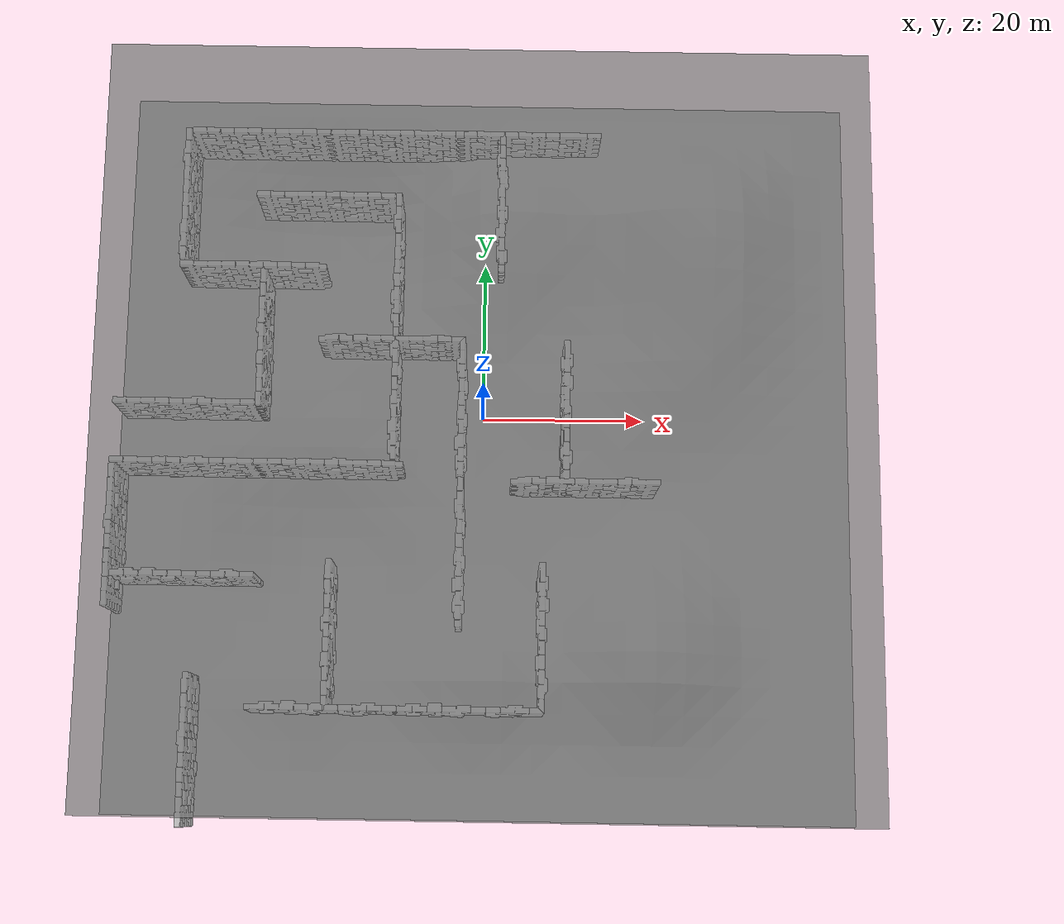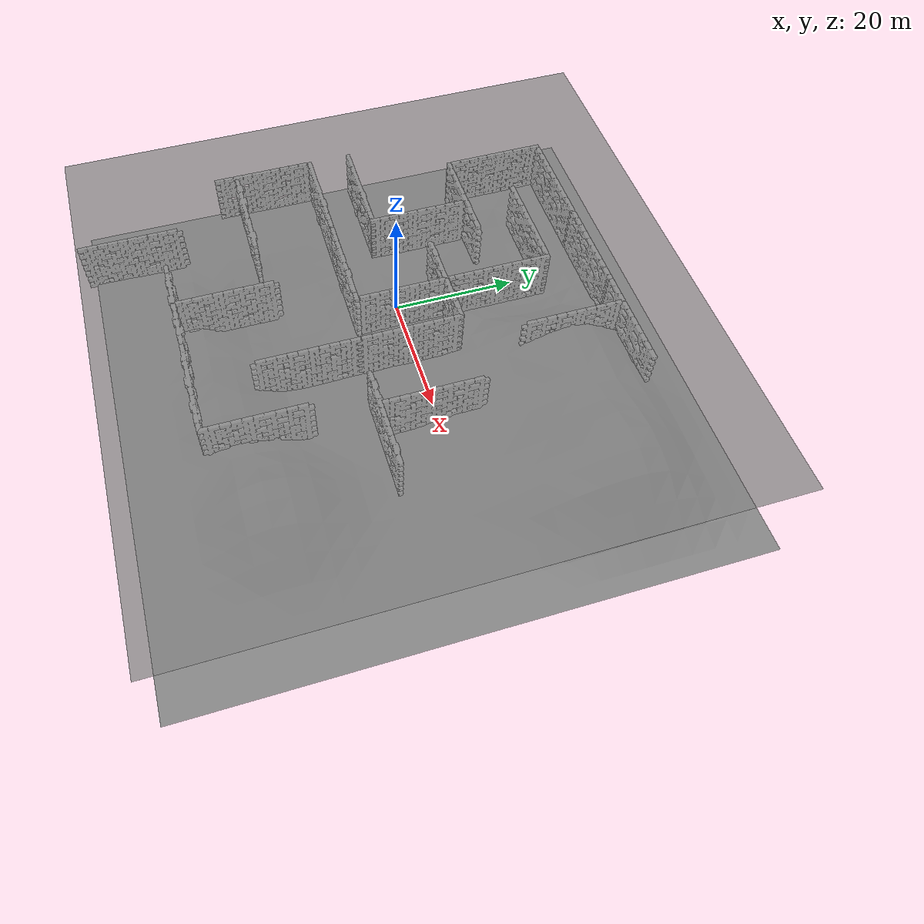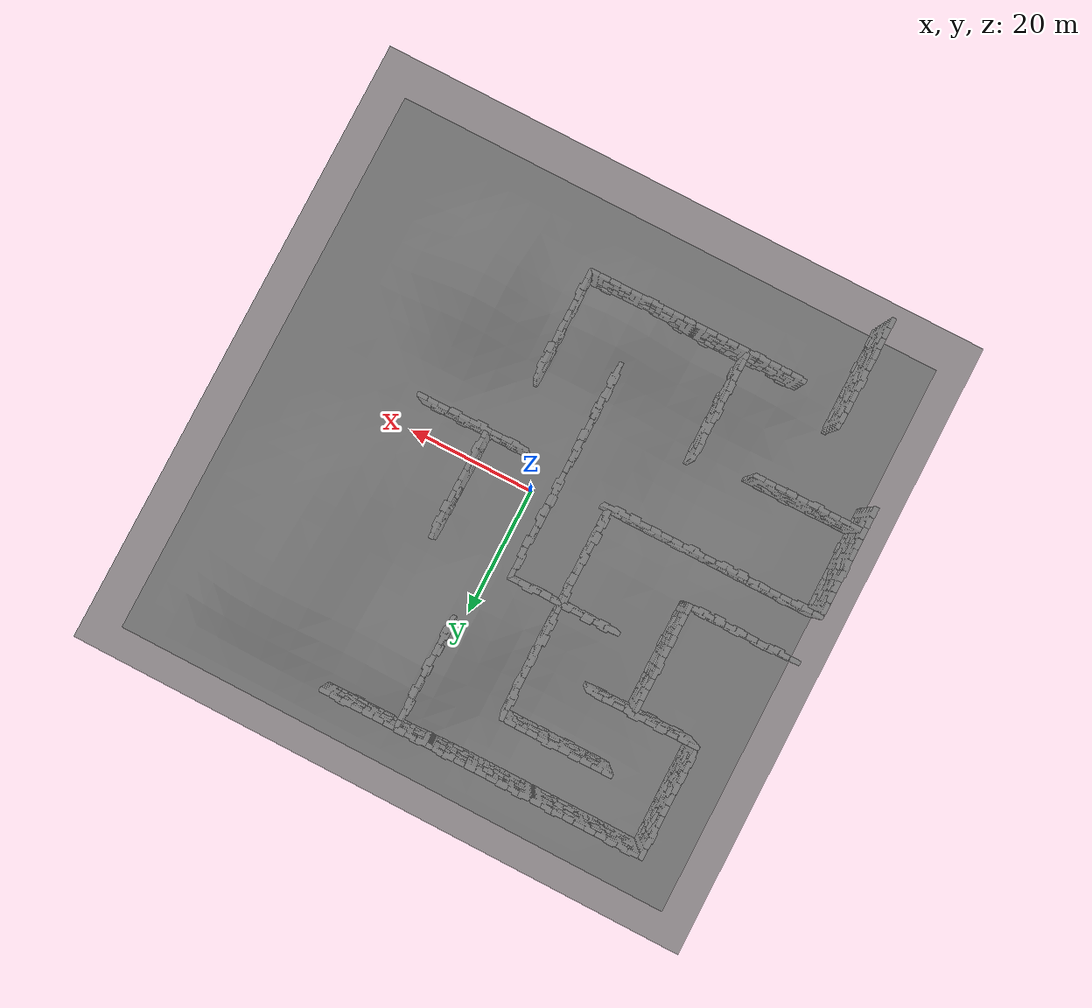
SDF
<?xml version="1.0" ?>
<sdf version="1.9">
  <world name="maze">

    <!-- Base Ignition Gazebo plugins -->
    <plugin
        filename="ignition-gazebo-physics-system"
        name="ignition::gazebo::systems::Physics">
    </plugin>
    <plugin
        filename="ignition-gazebo-user-commands-system"
        name="ignition::gazebo::systems::UserCommands">
    </plugin>
    <plugin
        filename="ignition-gazebo-scene-broadcaster-system"
        name="ignition::gazebo::systems::SceneBroadcaster">
    </plugin>

    <!-- IMU plugin manages all IMU sensors -->
    <plugin filename="libignition-gazebo-imu-system.so"
            name="ignition::gazebo::systems::Imu">
    </plugin>

    <!-- To be able to use the lidar sensor -->
    <plugin filename="libignition-gazebo-sensors-system.so"
            name="ignition::gazebo::systems::Sensors">
      <render_engine>ogre2</render_engine>
    </plugin>

    <plugin
      filename="ignition-gazebo-user-commands-system"
      name="ignition::gazebo::systems::UserCommands">
    </plugin>

    <!-- Buoyancy plugin manages buoyancy for all models -->
    <plugin
        filename="ignition-gazebo-buoyancy-system"
        name="ignition::gazebo::systems::Buoyancy">
      <graded_buoyancy>
        <default_density>1000</default_density>
        <density_change>
          <above_depth>0</above_depth>
          <density>1</density>
        </density_change>
      </graded_buoyancy>
    </plugin>

    <!-- Global light source -->
    <light type="directional" name="sun">
      <pose>0 0 150 0 0 0</pose>
      <diffuse>1 1 1 1</diffuse>
      <specular>.1 .1 .1 1</specular>
      <direction>0.3 0.3 -1</direction>
      <cast_shadows>false</cast_shadows>
    </light>

    <!-- Global light source -->
    <light type="directional" name="sun_diffuse">
      <pose>0 0 -150 0 0 0</pose>
      <diffuse>0.6 0.6 0.6 1</diffuse>
      <specular>0 0 0 1</specular>
      <direction>-0.3 -0.3 -1</direction>
      <cast_shadows>false</cast_shadows>
    </light>

    <include>
      <uri>model://min_pipes_environment</uri>
      <pose>0 0 0 0 0 0</pose>
    </include>

    <include>
      <static>true</static>
      <name>Wall1</name>
      <pose>-32 4 -20 0 0 1.57 </pose>
      <uri>model://uneven_wall</uri>
    </include>

    <include>
      <static>true</static>
      <name>Wall2</name>
      <pose>-32 -4 -20 0 0 1.57 </pose>
      <uri>model://uneven_wall</uri>
    </include>

    <include>
      <static>true</static>
      <name>Wall3</name>
      <pose>-13 -4 -20 0 0 1.57 </pose>
      <uri>model://uneven_wall</uri>
    </include>

    <include>
      <static>true</static>
      <name>Wall4</name>
      <pose>-12 -2 -20 0 0 0 </pose>
      <uri>model://uneven_wall</uri>
    </include>

    <include>
      <static>true</static>
      <name>Wall5</name>
      <pose>-12 16 -20 0 0 0 </pose>
      <uri>model://uneven_wall</uri>
    </include>

    <include>
      <static>true</static>
      <name>Wall6</name>
      <pose> -30  20.9  -20  0  0  3.14 </pose>
      <uri>model://uneven_wall</uri>
    </include>

    <include>
      <static>true</static>
      <name>Wall7</name>
      <pose> -24  23  -20  0  0  1.57 </pose>
      <uri>model://uneven_wall</uri>
    </include>

    <include>
      <static>true</static>
      <name>Wall8</name>
      <pose> -14  33  -20  0  0  1.57 </pose>
      <uri>model://uneven_wall</uri>
    </include>

    <include>
      <static>true</static>
      <name>Wall9</name>
      <pose> -41  25  -20  0  0  0 </pose>
      <uri>model://uneven_wall</uri>
    </include>

    <include>
      <static>true</static>
      <name>Wall10</name>
      <pose> -39  42  -20  0  0  -1.57 </pose>
      <uri>model://uneven_wall</uri>
    </include>

      <include>
      <static>true</static>
      <name>Wall11</name>
      <pose>  -20  42  -20  0  0  -1.57  </pose>
      <uri>model://uneven_wall</uri>
    </include>

      <include>
      <static>true</static>
      <name>Wall12</name>
      <pose> -20  13  -20  0  0  -1.57  </pose>
      <uri>model://uneven_wall</uri>
    </include>

      <include>
      <static>true</static>
      <name>Wall13</name>
      <pose>  -2  42  -20  0  0  -1.57 </pose>
      <uri>model://uneven_wall</uri>
    </include>

        <include>
      <static>true</static>
      <name>Wall14</name>
      <pose>  2  25  -20  0  0  0</pose>
      <uri>model://uneven_wall</uri>
    </include>

      <include>
      <static>true</static>
      <name>Wall15</name>
      <pose>  -3  -4  -20  0  0  0  </pose>
      <uri>model://uneven_wall</uri>
    </include>

      <include>
      <static>true</static>
      <name>Wall16</name>
      <pose>  -3  -23  -20  0  0  0</pose>
      <uri>model://uneven_wall</uri>
    </include>

      <include>
      <static>true</static>
      <name>Wall17</name>
      <pose>  6  -6  -20  0  0  -1.57 </pose>
      <uri>model://uneven_wall</uri>
    </include>

      <include>
      <static>true</static>
      <name>Wall18</name>
      <pose>  -9  -36  -20  0  0  -1.57 </pose>
      <uri>model://uneven_wall</uri>
    </include>

      <include>
      <static>true</static>
      <name>Wall19</name>
      <pose>  -20  42  -20  0  0  -1.57 </pose>
      <uri>model://uneven_wall</uri>
    </include>

      <include>
      <static>true</static>
      <name>Wall20</name>
      <pose>  -38  -34  -20  0  0  3.14 </pose>
      <uri>model://uneven_wall</uri>
    </include>

      <include>
      <static>true</static>
      <name>Wall21</name>
      <pose> -20  -19  -20  0  0  3.14  </pose>
      <uri>model://uneven_wall</uri>
    </include>

      <include>
      <static>true</static>
      <name>Wall22</name>
      <pose>  -28  -36  -20  0  0  -1.57  </pose>
      <uri>model://uneven_wall</uri>
    </include>

      <include>
      <static>true</static>
      <name>Wall23</name>
      <pose>  -47  -19  -20  0  0  -1.57 </pose>
      <uri>model://uneven_wall</uri>
    </include>

      <include>
      <static>true</static>
      <name>Wall24</name>
      <pose>  8  -19  -20  0  0  3.14 </pose>
      <uri>model://uneven_wall</uri>
    </include>

      <include>
      <static>true</static>
      <name>Wall25</name>
      <pose>  11  11  -20  0  0  3.14 </pose>
      <uri>model://uneven_wall</uri>
    </include>

      <include>
      <static>true</static>
      <name>Wall26</name>
      <pose> -49  -6  -20  0  0  3.14 </pose>
      <uri>model://uneven_wall</uri>
    </include>

  </world>
</sdf>

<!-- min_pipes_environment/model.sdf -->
<sdf version="1.7">
  <model name="min_pipes_environment">
    <static>true</static>
    <link name="seabed">
      <collision name="seabed">
        <pose>0 0 -20 0 0 1.57</pose>
        <geometry>
          <mesh>
            <uri>meshes/seabed.dae</uri>
            <scale>1.0 1.0 1.0</scale>
          </mesh>
        </geometry>
      </collision>

      <visual name="seabed">
        <cast_shadows>true</cast_shadows>
        <pose>0 0 -20 0 0 1.57</pose>
        <geometry>
          <mesh>
            <uri>meshes/seabed.dae</uri>
            <scale>1.0 1.0 1.0</scale>
          </mesh>
        </geometry>
        <material>
          <pbr>
            <metal>
              <albedo_map>textures/soil_sand_0045_01.jpg</albedo_map>
            </metal>
          </pbr>
          <ambient>0.5 0.5 0.5 1.0</ambient>
          <diffuse>0.5 0.5 0.5 1.0</diffuse>
          <specular>0.2 0.2 0.2 1.0</specular>
        </material>
      </visual>
    </link>

    <link name="ocean_link">
      <visual name="surface">
        <pose>0 0 0 0 0 0</pose>
        <cast_shadows>false</cast_shadows>
        <geometry>
          <box>
            <size>100 100 0.01</size>
          </box>
        </geometry>
        <material>
          <pbr>
            <metal>
              <albedo_map>textures/water_water_0076_03_s.jpg</albedo_map>
            </metal>
          </pbr>
          <ambient> 0.5 0.5 0.5 0.8 </ambient>
          <diffuse> 0.5 0.5 0.5 0.8 </diffuse>
        </material>
      </visual>
    </link>

  </model>
</sdf>

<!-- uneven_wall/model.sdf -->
<sdf version="1.7">
  <model name="uneven_wall">
    <static>true</static>

    <link name="single_wall">
      <collision name="single_wall">
        <pose>0 0 0 1.57 0 0</pose>
        <geometry>
          <mesh>
            <uri>model://uneven_wall/meshes/jenga_wall.obj</uri>
            <scale>.4 .4 .4</scale>
          </mesh>
        </geometry>
      </collision>

      <visual name="single_wall">
        <cast_shadows>true</cast_shadows>
        <pose>0 0 0 1.57 0 0</pose>
        <geometry>
          <mesh>
            <uri>model://uneven_wall/meshes/jenga_wall.obj</uri>
            <scale>.4 .4 .4</scale>
          </mesh>
        </geometry>
      </visual>
    </link>

  </model>
</sdf>
